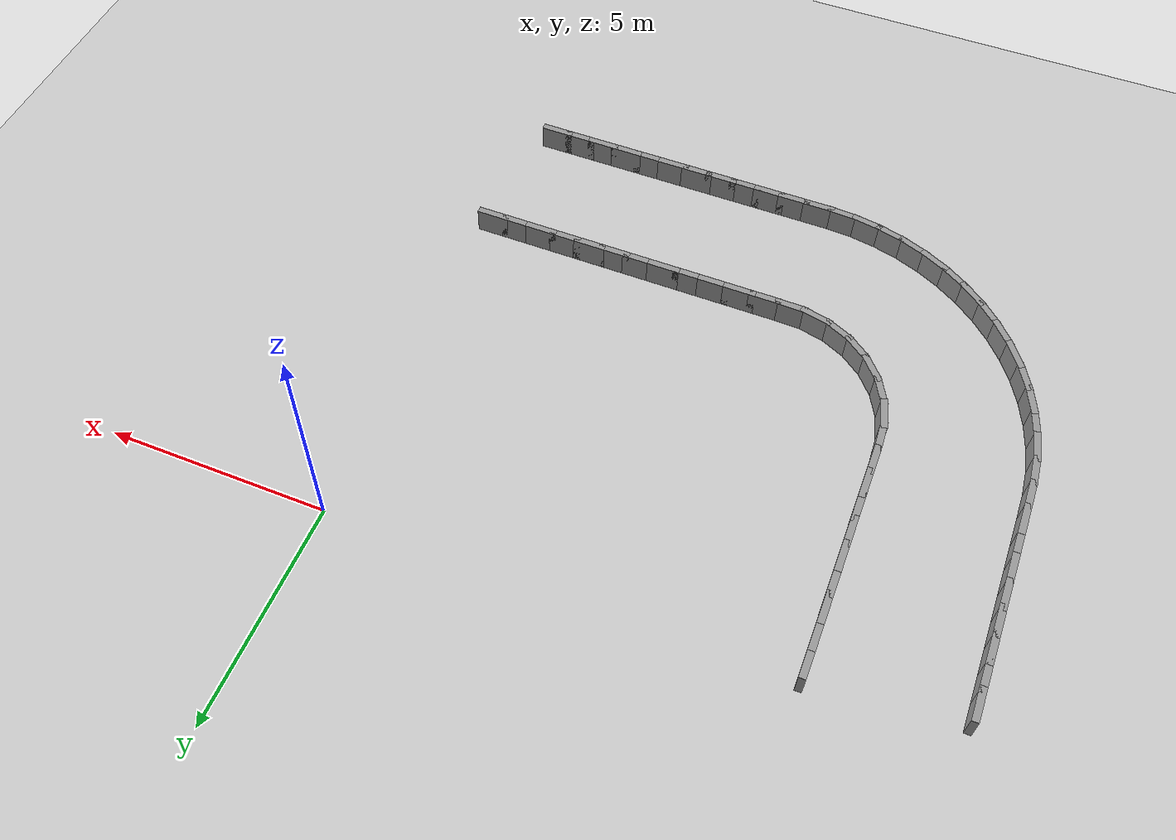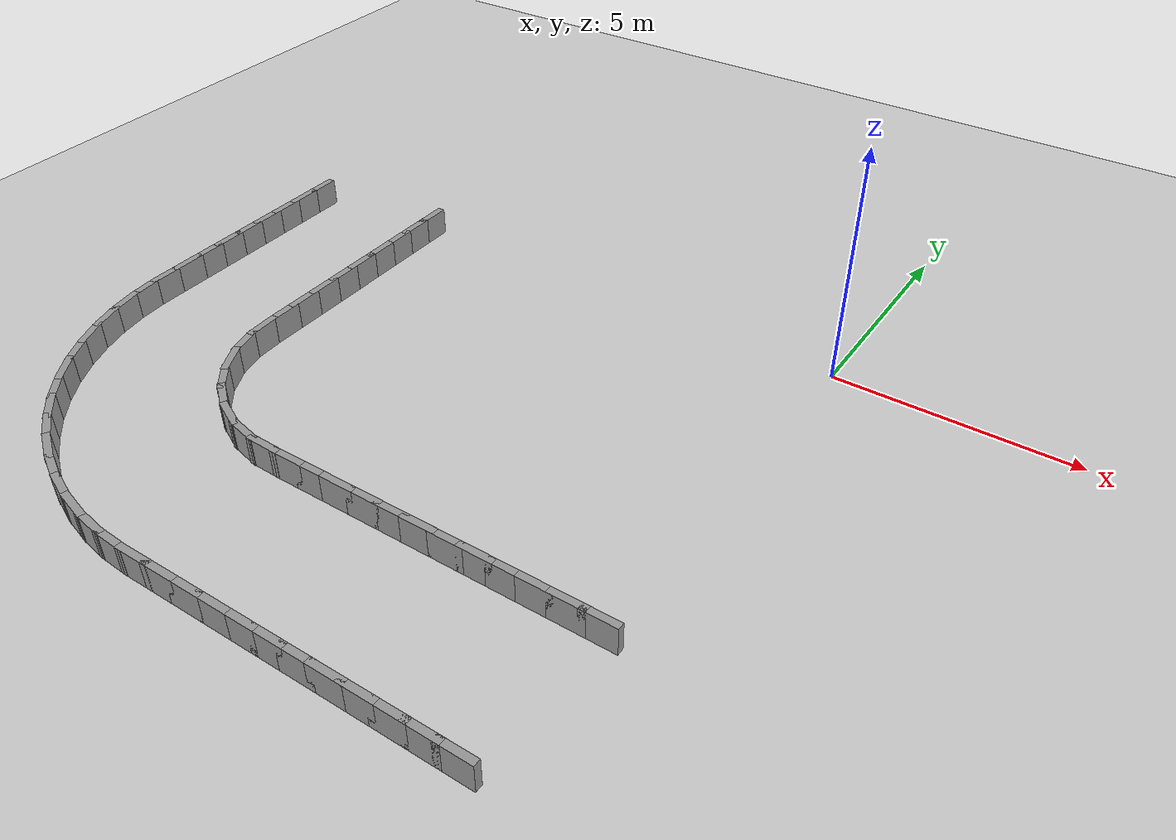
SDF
<sdf version="1.7">
 <world name="default">
  <model name="ground_plane">
   <static>1</static>
   <link name="link">
    <collision name="collision">
     <geometry><plane><normal>0 0 1</normal><size>100 100</size></plane></geometry>
     <surface><friction><ode><mu>100</mu><mu2>50</mu2></ode></friction></surface>
    </collision>
    <visual name="visual">
     <cast_shadows>0</cast_shadows>
     <geometry><plane><normal>0 0 1</normal><size>100 100</size></plane></geometry>
     <material>
      <script><uri>file://media/materials/scripts/gazebo.material</uri><name>Gazebo/Grey</name></script>
     </material>
    </visual>
   </link>
  </model>
  <model name="rand_rrect_01">
   <link name="Wall_48">
    <collision name="Wall_48_Collision">
     <geometry><box><size>0.7500 0.1500 0.6000</size></box></geometry>
     <pose>0 0 0.3000 0 -0 0</pose>
    </collision>
    <visual name="Wall_48_Visual">
     <pose>0 0 0.3000 0 -0 0</pose>
     <geometry><box><size>0.7500 0.1500 0.6000</size></box></geometry>
     <material>
      <script><uri>file://media/materials/scripts/gazebo.material</uri><name>Gazebo/Grey</name></script>
      <ambient>1 1 1 1</ambient>
     </material>
    </visual>
    <pose>-10.0566 -0.2756 0 0 -0 -1.57080</pose>
   </link>
   <link name="Wall_49">
    <collision name="Wall_49_Collision">
     <geometry><box><size>0.7500 0.1500 0.6000</size></box></geometry>
     <pose>0 0 0.3000 0 -0 0</pose>
    </collision>
    <visual name="Wall_49_Visual">
     <pose>0 0 0.3000 0 -0 0</pose>
     <geometry><box><size>0.7500 0.1500 0.6000</size></box></geometry>
     <material>
      <script><uri>file://media/materials/scripts/gazebo.material</uri><name>Gazebo/Grey</name></script>
      <ambient>1 1 1 1</ambient>
     </material>
    </visual>
    <pose>-10.0566 -0.8756 0 0 -0 -1.57080</pose>
   </link>
   <link name="Wall_50">
    <collision name="Wall_50_Collision">
     <geometry><box><size>0.7500 0.1500 0.6000</size></box></geometry>
     <pose>0 0 0.3000 0 -0 0</pose>
    </collision>
    <visual name="Wall_50_Visual">
     <pose>0 0 0.3000 0 -0 0</pose>
     <geometry><box><size>0.7500 0.1500 0.6000</size></box></geometry>
     <material>
      <script><uri>file://media/materials/scripts/gazebo.material</uri><name>Gazebo/Grey</name></script>
      <ambient>1 1 1 1</ambient>
     </material>
    </visual>
    <pose>-10.0566 -1.4756 0 0 -0 -1.57080</pose>
   </link>
   <link name="Wall_51">
    <collision name="Wall_51_Collision">
     <geometry><box><size>0.7500 0.1500 0.6000</size></box></geometry>
     <pose>0 0 0.3000 0 -0 0</pose>
    </collision>
    <visual name="Wall_51_Visual">
     <pose>0 0 0.3000 0 -0 0</pose>
     <geometry><box><size>0.7500 0.1500 0.6000</size></box></geometry>
     <material>
      <script><uri>file://media/materials/scripts/gazebo.material</uri><name>Gazebo/Grey</name></script>
      <ambient>1 1 1 1</ambient>
     </material>
    </visual>
    <pose>-10.0566 -2.0756 0 0 -0 -1.57080</pose>
   </link>
   <link name="Wall_52">
    <collision name="Wall_52_Collision">
     <geometry><box><size>0.7500 0.1500 0.6000</size></box></geometry>
     <pose>0 0 0.3000 0 -0 0</pose>
    </collision>
    <visual name="Wall_52_Visual">
     <pose>0 0 0.3000 0 -0 0</pose>
     <geometry><box><size>0.7500 0.1500 0.6000</size></box></geometry>
     <material>
      <script><uri>file://media/materials/scripts/gazebo.material</uri><name>Gazebo/Grey</name></script>
      <ambient>1 1 1 1</ambient>
     </material>
    </visual>
    <pose>-10.0566 -2.6756 0 0 -0 -1.57080</pose>
   </link>
   <link name="Wall_53">
    <collision name="Wall_53_Collision">
     <geometry><box><size>0.7500 0.1500 0.6000</size></box></geometry>
     <pose>0 0 0.3000 0 -0 0</pose>
    </collision>
    <visual name="Wall_53_Visual">
     <pose>0 0 0.3000 0 -0 0</pose>
     <geometry><box><size>0.7500 0.1500 0.6000</size></box></geometry>
     <material>
      <script><uri>file://media/materials/scripts/gazebo.material</uri><name>Gazebo/Grey</name></script>
      <ambient>1 1 1 1</ambient>
     </material>
    </visual>
    <pose>-10.0566 -3.2756 0 0 -0 -1.57080</pose>
   </link>
   <link name="Wall_54">
    <collision name="Wall_54_Collision">
     <geometry><box><size>0.7500 0.1500 0.6000</size></box></geometry>
     <pose>0 0 0.3000 0 -0 0</pose>
    </collision>
    <visual name="Wall_54_Visual">
     <pose>0 0 0.3000 0 -0 0</pose>
     <geometry><box><size>0.7500 0.1500 0.6000</size></box></geometry>
     <material>
      <script><uri>file://media/materials/scripts/gazebo.material</uri><name>Gazebo/Grey</name></script>
      <ambient>1 1 1 1</ambient>
     </material>
    </visual>
    <pose>-10.0566 -3.8756 0 0 -0 -1.57080</pose>
   </link>
   <link name="Wall_55">
    <collision name="Wall_55_Collision">
     <geometry><box><size>0.7500 0.1500 0.6000</size></box></geometry>
     <pose>0 0 0.3000 0 -0 0</pose>
    </collision>
    <visual name="Wall_55_Visual">
     <pose>0 0 0.3000 0 -0 0</pose>
     <geometry><box><size>0.7500 0.1500 0.6000</size></box></geometry>
     <material>
      <script><uri>file://media/materials/scripts/gazebo.material</uri><name>Gazebo/Grey</name></script>
      <ambient>1 1 1 1</ambient>
     </material>
    </visual>
    <pose>-10.0566 -4.4756 0 0 -0 -1.57080</pose>
   </link>
   <link name="Wall_56">
    <collision name="Wall_56_Collision">
     <geometry><box><size>0.7500 0.1500 0.6000</size></box></geometry>
     <pose>0 0 0.3000 0 -0 0</pose>
    </collision>
    <visual name="Wall_56_Visual">
     <pose>0 0 0.3000 0 -0 0</pose>
     <geometry><box><size>0.7500 0.1500 0.6000</size></box></geometry>
     <material>
      <script><uri>file://media/materials/scripts/gazebo.material</uri><name>Gazebo/Grey</name></script>
      <ambient>1 1 1 1</ambient>
     </material>
    </visual>
    <pose>-10.0566 -5.0756 0 0 -0 -1.57080</pose>
   </link>
   <link name="Wall_57">
    <collision name="Wall_57_Collision">
     <geometry><box><size>0.7493 0.1500 0.6000</size></box></geometry>
     <pose>0 0 0.3000 0 -0 0</pose>
    </collision>
    <visual name="Wall_57_Visual">
     <pose>0 0 0.3000 0 -0 0</pose>
     <geometry><box><size>0.7493 0.1500 0.6000</size></box></geometry>
     <material>
      <script><uri>file://media/materials/scripts/gazebo.material</uri><name>Gazebo/Grey</name></script>
      <ambient>1 1 1 1</ambient>
     </material>
    </visual>
    <pose>-10.0426 -5.6750 0 0 -0 -1.52401</pose>
   </link>
   <link name="Wall_58">
    <collision name="Wall_58_Collision">
     <geometry><box><size>0.7488 0.1500 0.6000</size></box></geometry>
     <pose>0 0 0.3000 0 -0 0</pose>
    </collision>
    <visual name="Wall_58_Visual">
     <pose>0 0 0.3000 0 -0 0</pose>
     <geometry><box><size>0.7488 0.1500 0.6000</size></box></geometry>
     <material>
      <script><uri>file://media/materials/scripts/gazebo.material</uri><name>Gazebo/Grey</name></script>
      <ambient>1 1 1 1</ambient>
     </material>
    </visual>
    <pose>-9.9537 -6.2642 0 0 -0 -1.31815</pose>
   </link>
   <link name="Wall_59">
    <collision name="Wall_59_Collision">
     <geometry><box><size>0.7488 0.1500 0.6000</size></box></geometry>
     <pose>0 0 0.3000 0 -0 0</pose>
    </collision>
    <visual name="Wall_59_Visual">
     <pose>0 0 0.3000 0 -0 0</pose>
     <geometry><box><size>0.7488 0.1500 0.6000</size></box></geometry>
     <material>
      <script><uri>file://media/materials/scripts/gazebo.material</uri><name>Gazebo/Grey</name></script>
      <ambient>1 1 1 1</ambient>
     </material>
    </visual>
    <pose>-9.7429 -6.8208 0 0 -0 -1.09917</pose>
   </link>
   <link name="Wall_60">
    <collision name="Wall_60_Collision">
     <geometry><box><size>0.7488 0.1500 0.6000</size></box></geometry>
     <pose>0 0 0.3000 0 -0 0</pose>
    </collision>
    <visual name="Wall_60_Visual">
     <pose>0 0 0.3000 0 -0 0</pose>
     <geometry><box><size>0.7488 0.1500 0.6000</size></box></geometry>
     <material>
      <script><uri>file://media/materials/scripts/gazebo.material</uri><name>Gazebo/Grey</name></script>
      <ambient>1 1 1 1</ambient>
     </material>
    </visual>
    <pose>-9.4161 -7.3183 0 0 -0 -0.88016</pose>
   </link>
   <link name="Wall_61">
    <collision name="Wall_61_Collision">
     <geometry><box><size>0.7488 0.1500 0.6000</size></box></geometry>
     <pose>0 0 0.3000 0 -0 0</pose>
    </collision>
    <visual name="Wall_61_Visual">
     <pose>0 0 0.3000 0 -0 0</pose>
     <geometry><box><size>0.7488 0.1500 0.6000</size></box></geometry>
     <material>
      <script><uri>file://media/materials/scripts/gazebo.material</uri><name>Gazebo/Grey</name></script>
      <ambient>1 1 1 1</ambient>
     </material>
    </visual>
    <pose>-8.9891 -7.7329 0 0 -0 -0.66117</pose>
   </link>
   <link name="Wall_62">
    <collision name="Wall_62_Collision">
     <geometry><box><size>0.7488 0.1500 0.6000</size></box></geometry>
     <pose>0 0 0.3000 0 -0 0</pose>
    </collision>
    <visual name="Wall_62_Visual">
     <pose>0 0 0.3000 0 -0 0</pose>
     <geometry><box><size>0.7488 0.1500 0.6000</size></box></geometry>
     <material>
      <script><uri>file://media/materials/scripts/gazebo.material</uri><name>Gazebo/Grey</name></script>
      <ambient>1 1 1 1</ambient>
     </material>
    </visual>
    <pose>-8.4821 -8.0449 0 0 -0 -0.44219</pose>
   </link>
   <link name="Wall_63">
    <collision name="Wall_63_Collision">
     <geometry><box><size>0.7488 0.1500 0.6000</size></box></geometry>
     <pose>0 0 0.3000 0 -0 0</pose>
    </collision>
    <visual name="Wall_63_Visual">
     <pose>0 0 0.3000 0 -0 0</pose>
     <geometry><box><size>0.7488 0.1500 0.6000</size></box></geometry>
     <material>
      <script><uri>file://media/materials/scripts/gazebo.material</uri><name>Gazebo/Grey</name></script>
      <ambient>1 1 1 1</ambient>
     </material>
    </visual>
    <pose>-7.9196 -8.2393 0 0 -0 -0.22318</pose>
   </link>
   <link name="Wall_64">
    <collision name="Wall_64_Collision">
     <geometry><box><size>0.7496 0.1500 0.6000</size></box></geometry>
     <pose>0 0 0.3000 0 -0 0</pose>
    </collision>
    <visual name="Wall_64_Visual">
     <pose>0 0 0.3000 0 -0 0</pose>
     <geometry><box><size>0.7496 0.1500 0.6000</size></box></geometry>
     <material>
      <script><uri>file://media/materials/scripts/gazebo.material</uri><name>Gazebo/Grey</name></script>
      <ambient>1 1 1 1</ambient>
     </material>
    </visual>
    <pose>-7.3279 -8.3144 0 0 -0 -0.02951</pose>
   </link>
   <link name="Wall_65">
    <collision name="Wall_65_Collision">
     <geometry><box><size>0.7500 0.1500 0.6000</size></box></geometry>
     <pose>0 0 0.3000 0 -0 0</pose>
    </collision>
    <visual name="Wall_65_Visual">
     <pose>0 0 0.3000 0 -0 0</pose>
     <geometry><box><size>0.7500 0.1500 0.6000</size></box></geometry>
     <material>
      <script><uri>file://media/materials/scripts/gazebo.material</uri><name>Gazebo/Grey</name></script>
      <ambient>1 1 1 1</ambient>
     </material>
    </visual>
    <pose>-6.7283 -8.3232 0 0 -0 0.00000</pose>
   </link>
   <link name="Wall_66">
    <collision name="Wall_66_Collision">
     <geometry><box><size>0.7500 0.1500 0.6000</size></box></geometry>
     <pose>0 0 0.3000 0 -0 0</pose>
    </collision>
    <visual name="Wall_66_Visual">
     <pose>0 0 0.3000 0 -0 0</pose>
     <geometry><box><size>0.7500 0.1500 0.6000</size></box></geometry>
     <material>
      <script><uri>file://media/materials/scripts/gazebo.material</uri><name>Gazebo/Grey</name></script>
      <ambient>1 1 1 1</ambient>
     </material>
    </visual>
    <pose>-6.1283 -8.3232 0 0 -0 0.00000</pose>
   </link>
   <link name="Wall_67">
    <collision name="Wall_67_Collision">
     <geometry><box><size>0.7500 0.1500 0.6000</size></box></geometry>
     <pose>0 0 0.3000 0 -0 0</pose>
    </collision>
    <visual name="Wall_67_Visual">
     <pose>0 0 0.3000 0 -0 0</pose>
     <geometry><box><size>0.7500 0.1500 0.6000</size></box></geometry>
     <material>
      <script><uri>file://media/materials/scripts/gazebo.material</uri><name>Gazebo/Grey</name></script>
      <ambient>1 1 1 1</ambient>
     </material>
    </visual>
    <pose>-5.5283 -8.3232 0 0 -0 0.00000</pose>
   </link>
   <link name="Wall_68">
    <collision name="Wall_68_Collision">
     <geometry><box><size>0.7500 0.1500 0.6000</size></box></geometry>
     <pose>0 0 0.3000 0 -0 0</pose>
    </collision>
    <visual name="Wall_68_Visual">
     <pose>0 0 0.3000 0 -0 0</pose>
     <geometry><box><size>0.7500 0.1500 0.6000</size></box></geometry>
     <material>
      <script><uri>file://media/materials/scripts/gazebo.material</uri><name>Gazebo/Grey</name></script>
      <ambient>1 1 1 1</ambient>
     </material>
    </visual>
    <pose>-4.9283 -8.3232 0 0 -0 0.00000</pose>
   </link>
   <link name="Wall_69">
    <collision name="Wall_69_Collision">
     <geometry><box><size>0.7500 0.1500 0.6000</size></box></geometry>
     <pose>0 0 0.3000 0 -0 0</pose>
    </collision>
    <visual name="Wall_69_Visual">
     <pose>0 0 0.3000 0 -0 0</pose>
     <geometry><box><size>0.7500 0.1500 0.6000</size></box></geometry>
     <material>
      <script><uri>file://media/materials/scripts/gazebo.material</uri><name>Gazebo/Grey</name></script>
      <ambient>1 1 1 1</ambient>
     </material>
    </visual>
    <pose>-4.3283 -8.3232 0 0 -0 0.00000</pose>
   </link>
   <link name="Wall_70">
    <collision name="Wall_70_Collision">
     <geometry><box><size>0.7500 0.1500 0.6000</size></box></geometry>
     <pose>0 0 0.3000 0 -0 0</pose>
    </collision>
    <visual name="Wall_70_Visual">
     <pose>0 0 0.3000 0 -0 0</pose>
     <geometry><box><size>0.7500 0.1500 0.6000</size></box></geometry>
     <material>
      <script><uri>file://media/materials/scripts/gazebo.material</uri><name>Gazebo/Grey</name></script>
      <ambient>1 1 1 1</ambient>
     </material>
    </visual>
    <pose>-3.7283 -8.3232 0 0 -0 0.00000</pose>
   </link>
   <link name="Wall_71">
    <collision name="Wall_71_Collision">
     <geometry><box><size>0.7500 0.1500 0.6000</size></box></geometry>
     <pose>0 0 0.3000 0 -0 0</pose>
    </collision>
    <visual name="Wall_71_Visual">
     <pose>0 0 0.3000 0 -0 0</pose>
     <geometry><box><size>0.7500 0.1500 0.6000</size></box></geometry>
     <material>
      <script><uri>file://media/materials/scripts/gazebo.material</uri><name>Gazebo/Grey</name></script>
      <ambient>1 1 1 1</ambient>
     </material>
    </visual>
    <pose>-3.1283 -8.3232 0 0 -0 0.00000</pose>
   </link>
   <link name="Wall_72">
    <collision name="Wall_72_Collision">
     <geometry><box><size>0.7500 0.1500 0.6000</size></box></geometry>
     <pose>0 0 0.3000 0 -0 0</pose>
    </collision>
    <visual name="Wall_72_Visual">
     <pose>0 0 0.3000 0 -0 0</pose>
     <geometry><box><size>0.7500 0.1500 0.6000</size></box></geometry>
     <material>
      <script><uri>file://media/materials/scripts/gazebo.material</uri><name>Gazebo/Grey</name></script>
      <ambient>1 1 1 1</ambient>
     </material>
    </visual>
    <pose>-2.5283 -8.3232 0 0 -0 0.00000</pose>
   </link>
   <link name="Wall_73">
    <collision name="Wall_73_Collision">
     <geometry><box><size>0.7500 0.1500 0.6000</size></box></geometry>
     <pose>0 0 0.3000 0 -0 0</pose>
    </collision>
    <visual name="Wall_73_Visual">
     <pose>0 0 0.3000 0 -0 0</pose>
     <geometry><box><size>0.7500 0.1500 0.6000</size></box></geometry>
     <material>
      <script><uri>file://media/materials/scripts/gazebo.material</uri><name>Gazebo/Grey</name></script>
      <ambient>1 1 1 1</ambient>
     </material>
    </visual>
    <pose>-1.9283 -8.3232 0 0 -0 0.00000</pose>
   </link>
   <link name="Wall_74">
    <collision name="Wall_74_Collision">
     <geometry><box><size>0.7500 0.1500 0.6000</size></box></geometry>
     <pose>0 0 0.3000 0 -0 0</pose>
    </collision>
    <visual name="Wall_74_Visual">
     <pose>0 0 0.3000 0 -0 0</pose>
     <geometry><box><size>0.7500 0.1500 0.6000</size></box></geometry>
     <material>
      <script><uri>file://media/materials/scripts/gazebo.material</uri><name>Gazebo/Grey</name></script>
      <ambient>1 1 1 1</ambient>
     </material>
    </visual>
    <pose>-1.3283 -8.3232 0 0 -0 0.00000</pose>
   </link>
   <link name="Wall_75">
    <collision name="Wall_75_Collision">
     <geometry><box><size>0.7500 0.1500 0.6000</size></box></geometry>
     <pose>0 0 0.3000 0 -0 0</pose>
    </collision>
    <visual name="Wall_75_Visual">
     <pose>0 0 0.3000 0 -0 0</pose>
     <geometry><box><size>0.7500 0.1500 0.6000</size></box></geometry>
     <material>
      <script><uri>file://media/materials/scripts/gazebo.material</uri><name>Gazebo/Grey</name></script>
      <ambient>1 1 1 1</ambient>
     </material>
    </visual>
    <pose>-0.7283 -8.3232 0 0 -0 0.00000</pose>
   </link>
   <link name="Wall_76">
    <collision name="Wall_76_Collision">
     <geometry><box><size>0.7500 0.1500 0.6000</size></box></geometry>
     <pose>0 0 0.3000 0 -0 0</pose>
    </collision>
    <visual name="Wall_76_Visual">
     <pose>0 0 0.3000 0 -0 0</pose>
     <geometry><box><size>0.7500 0.1500 0.6000</size></box></geometry>
     <material>
      <script><uri>file://media/materials/scripts/gazebo.material</uri><name>Gazebo/Grey</name></script>
      <ambient>1 1 1 1</ambient>
     </material>
    </visual>
    <pose>-0.1283 -8.3232 0 0 -0 0.00000</pose>
   </link>
   <link name="Wall_179">
    <collision name="Wall_179_Collision">
     <geometry><box><size>0.7500 0.1500 0.6000</size></box></geometry>
     <pose>0 0 0.3000 0 -0 0</pose>
    </collision>
    <visual name="Wall_179_Visual">
     <pose>0 0 0.3000 0 -0 0</pose>
     <geometry><box><size>0.7500 0.1500 0.6000</size></box></geometry>
     <material>
      <script><uri>file://media/materials/scripts/gazebo.material</uri><name>Gazebo/Grey</name></script>
      <ambient>1 1 1 1</ambient>
     </material>
    </visual>
    <pose>-13.1826 -0.6551 0 0 -0 -1.57080</pose>
   </link>
   <link name="Wall_180">
    <collision name="Wall_180_Collision">
     <geometry><box><size>0.7500 0.1500 0.6000</size></box></geometry>
     <pose>0 0 0.3000 0 -0 0</pose>
    </collision>
    <visual name="Wall_180_Visual">
     <pose>0 0 0.3000 0 -0 0</pose>
     <geometry><box><size>0.7500 0.1500 0.6000</size></box></geometry>
     <material>
      <script><uri>file://media/materials/scripts/gazebo.material</uri><name>Gazebo/Grey</name></script>
      <ambient>1 1 1 1</ambient>
     </material>
    </visual>
    <pose>-13.1826 -1.2551 0 0 -0 -1.57080</pose>
   </link>
   <link name="Wall_181">
    <collision name="Wall_181_Collision">
     <geometry><box><size>0.7500 0.1500 0.6000</size></box></geometry>
     <pose>0 0 0.3000 0 -0 0</pose>
    </collision>
    <visual name="Wall_181_Visual">
     <pose>0 0 0.3000 0 -0 0</pose>
     <geometry><box><size>0.7500 0.1500 0.6000</size></box></geometry>
     <material>
      <script><uri>file://media/materials/scripts/gazebo.material</uri><name>Gazebo/Grey</name></script>
      <ambient>1 1 1 1</ambient>
     </material>
    </visual>
    <pose>-13.1826 -1.8551 0 0 -0 -1.57080</pose>
   </link>
   <link name="Wall_182">
    <collision name="Wall_182_Collision">
     <geometry><box><size>0.7500 0.1500 0.6000</size></box></geometry>
     <pose>0 0 0.3000 0 -0 0</pose>
    </collision>
    <visual name="Wall_182_Visual">
     <pose>0 0 0.3000 0 -0 0</pose>
     <geometry><box><size>0.7500 0.1500 0.6000</size></box></geometry>
     <material>
      <script><uri>file://media/materials/scripts/gazebo.material</uri><name>Gazebo/Grey</name></script>
      <ambient>1 1 1 1</ambient>
     </material>
    </visual>
    <pose>-13.1826 -2.4551 0 0 -0 -1.57080</pose>
   </link>
   <link name="Wall_183">
    <collision name="Wall_183_Collision">
     <geometry><box><size>0.7500 0.1500 0.6000</size></box></geometry>
     <pose>0 0 0.3000 0 -0 0</pose>
    </collision>
    <visual name="Wall_183_Visual">
     <pose>0 0 0.3000 0 -0 0</pose>
     <geometry><box><size>0.7500 0.1500 0.6000</size></box></geometry>
     <material>
      <script><uri>file://media/materials/scripts/gazebo.material</uri><name>Gazebo/Grey</name></script>
      <ambient>1 1 1 1</ambient>
     </material>
    </visual>
    <pose>-13.1826 -3.0551 0 0 -0 -1.57080</pose>
   </link>
   <link name="Wall_184">
    <collision name="Wall_184_Collision">
     <geometry><box><size>0.7500 0.1500 0.6000</size></box></geometry>
     <pose>0 0 0.3000 0 -0 0</pose>
    </collision>
    <visual name="Wall_184_Visual">
     <pose>0 0 0.3000 0 -0 0</pose>
     <geometry><box><size>0.7500 0.1500 0.6000</size></box></geometry>
     <material>
      <script><uri>file://media/materials/scripts/gazebo.material</uri><name>Gazebo/Grey</name></script>
      <ambient>1 1 1 1</ambient>
     </material>
    </visual>
    <pose>-13.1826 -3.6551 0 0 -0 -1.57080</pose>
   </link>
   <link name="Wall_185">
    <collision name="Wall_185_Collision">
     <geometry><box><size>0.7500 0.1500 0.6000</size></box></geometry>
     <pose>0 0 0.3000 0 -0 0</pose>
    </collision>
    <visual name="Wall_185_Visual">
     <pose>0 0 0.3000 0 -0 0</pose>
     <geometry><box><size>0.7500 0.1500 0.6000</size></box></geometry>
     <material>
      <script><uri>file://media/materials/scripts/gazebo.material</uri><name>Gazebo/Grey</name></script>
      <ambient>1 1 1 1</ambient>
     </material>
    </visual>
    <pose>-13.1826 -4.2551 0 0 -0 -1.57080</pose>
   </link>
   <link name="Wall_186">
    <collision name="Wall_186_Collision">
     <geometry><box><size>0.7500 0.1500 0.6000</size></box></geometry>
     <pose>0 0 0.3000 0 -0 0</pose>
    </collision>
    <visual name="Wall_186_Visual">
     <pose>0 0 0.3000 0 -0 0</pose>
     <geometry><box><size>0.7500 0.1500 0.6000</size></box></geometry>
     <material>
      <script><uri>file://media/materials/scripts/gazebo.material</uri><name>Gazebo/Grey</name></script>
      <ambient>1 1 1 1</ambient>
     </material>
    </visual>
    <pose>-13.1826 -4.8551 0 0 -0 -1.57080</pose>
   </link>
   <link name="Wall_187">
    <collision name="Wall_187_Collision">
     <geometry><box><size>0.7500 0.1500 0.6000</size></box></geometry>
     <pose>0 0 0.3000 0 -0 0</pose>
    </collision>
    <visual name="Wall_187_Visual">
     <pose>0 0 0.3000 0 -0 0</pose>
     <geometry><box><size>0.7500 0.1500 0.6000</size></box></geometry>
     <material>
      <script><uri>file://media/materials/scripts/gazebo.material</uri><name>Gazebo/Grey</name></script>
      <ambient>1 1 1 1</ambient>
     </material>
    </visual>
    <pose>-13.1813 -5.4551 0 0 -0 -1.56658</pose>
   </link>
   <link name="Wall_188">
    <collision name="Wall_188_Collision">
     <geometry><box><size>0.7497 0.1500 0.6000</size></box></geometry>
     <pose>0 0 0.3000 0 -0 0</pose>
    </collision>
    <visual name="Wall_188_Visual">
     <pose>0 0 0.3000 0 -0 0</pose>
     <geometry><box><size>0.7497 0.1500 0.6000</size></box></geometry>
     <material>
      <script><uri>file://media/materials/scripts/gazebo.material</uri><name>Gazebo/Grey</name></script>
      <ambient>1 1 1 1</ambient>
     </material>
    </visual>
    <pose>-13.1559 -6.0540 0 0 -0 -1.49039</pose>
   </link>
   <link name="Wall_189">
    <collision name="Wall_189_Collision">
     <geometry><box><size>0.7497 0.1500 0.6000</size></box></geometry>
     <pose>0 0 0.3000 0 -0 0</pose>
    </collision>
    <visual name="Wall_189_Visual">
     <pose>0 0 0.3000 0 -0 0</pose>
     <geometry><box><size>0.7497 0.1500 0.6000</size></box></geometry>
     <material>
      <script><uri>file://media/materials/scripts/gazebo.material</uri><name>Gazebo/Grey</name></script>
      <ambient>1 1 1 1</ambient>
     </material>
    </visual>
    <pose>-13.0774 -6.6478 0 0 -0 -1.38811</pose>
   </link>
   <link name="Wall_190">
    <collision name="Wall_190_Collision">
     <geometry><box><size>0.7497 0.1500 0.6000</size></box></geometry>
     <pose>0 0 0.3000 0 -0 0</pose>
    </collision>
    <visual name="Wall_190_Visual">
     <pose>0 0 0.3000 0 -0 0</pose>
     <geometry><box><size>0.7497 0.1500 0.6000</size></box></geometry>
     <material>
      <script><uri>file://media/materials/scripts/gazebo.material</uri><name>Gazebo/Grey</name></script>
      <ambient>1 1 1 1</ambient>
     </material>
    </visual>
    <pose>-12.9386 -7.2304 0 0 -0 -1.28579</pose>
   </link>
   <link name="Wall_191">
    <collision name="Wall_191_Collision">
     <geometry><box><size>0.7497 0.1500 0.6000</size></box></geometry>
     <pose>0 0 0.3000 0 -0 0</pose>
    </collision>
    <visual name="Wall_191_Visual">
     <pose>0 0 0.3000 0 -0 0</pose>
     <geometry><box><size>0.7497 0.1500 0.6000</size></box></geometry>
     <material>
      <script><uri>file://media/materials/scripts/gazebo.material</uri><name>Gazebo/Grey</name></script>
      <ambient>1 1 1 1</ambient>
     </material>
    </visual>
    <pose>-12.7410 -7.7959 0 0 -0 -1.18351</pose>
   </link>
   <link name="Wall_192">
    <collision name="Wall_192_Collision">
     <geometry><box><size>0.7497 0.1500 0.6000</size></box></geometry>
     <pose>0 0 0.3000 0 -0 0</pose>
    </collision>
    <visual name="Wall_192_Visual">
     <pose>0 0 0.3000 0 -0 0</pose>
     <geometry><box><size>0.7497 0.1500 0.6000</size></box></geometry>
     <material>
      <script><uri>file://media/materials/scripts/gazebo.material</uri><name>Gazebo/Grey</name></script>
      <ambient>1 1 1 1</ambient>
     </material>
    </visual>
    <pose>-12.4868 -8.3382 0 0 -0 -1.08124</pose>
   </link>
   <link name="Wall_193">
    <collision name="Wall_193_Collision">
     <geometry><box><size>0.7497 0.1500 0.6000</size></box></geometry>
     <pose>0 0 0.3000 0 -0 0</pose>
    </collision>
    <visual name="Wall_193_Visual">
     <pose>0 0 0.3000 0 -0 0</pose>
     <geometry><box><size>0.7497 0.1500 0.6000</size></box></geometry>
     <material>
      <script><uri>file://media/materials/scripts/gazebo.material</uri><name>Gazebo/Grey</name></script>
      <ambient>1 1 1 1</ambient>
     </material>
    </visual>
    <pose>-12.1785 -8.8517 0 0 -0 -0.97894</pose>
   </link>
   <link name="Wall_194">
    <collision name="Wall_194_Collision">
     <geometry><box><size>0.7497 0.1500 0.6000</size></box></geometry>
     <pose>0 0 0.3000 0 -0 0</pose>
    </collision>
    <visual name="Wall_194_Visual">
     <pose>0 0 0.3000 0 -0 0</pose>
     <geometry><box><size>0.7497 0.1500 0.6000</size></box></geometry>
     <material>
      <script><uri>file://media/materials/scripts/gazebo.material</uri><name>Gazebo/Grey</name></script>
      <ambient>1 1 1 1</ambient>
     </material>
    </visual>
    <pose>-11.8193 -9.3310 0 0 -0 -0.87664</pose>
   </link>
   <link name="Wall_195">
    <collision name="Wall_195_Collision">
     <geometry><box><size>0.7497 0.1500 0.6000</size></box></geometry>
     <pose>0 0 0.3000 0 -0 0</pose>
    </collision>
    <visual name="Wall_195_Visual">
     <pose>0 0 0.3000 0 -0 0</pose>
     <geometry><box><size>0.7497 0.1500 0.6000</size></box></geometry>
     <material>
      <script><uri>file://media/materials/scripts/gazebo.material</uri><name>Gazebo/Grey</name></script>
      <ambient>1 1 1 1</ambient>
     </material>
    </visual>
    <pose>-11.4131 -9.7712 0 0 -0 -0.77437</pose>
   </link>
   <link name="Wall_196">
    <collision name="Wall_196_Collision">
     <geometry><box><size>0.7497 0.1500 0.6000</size></box></geometry>
     <pose>0 0 0.3000 0 -0 0</pose>
    </collision>
    <visual name="Wall_196_Visual">
     <pose>0 0 0.3000 0 -0 0</pose>
     <geometry><box><size>0.7497 0.1500 0.6000</size></box></geometry>
     <material>
      <script><uri>file://media/materials/scripts/gazebo.material</uri><name>Gazebo/Grey</name></script>
      <ambient>1 1 1 1</ambient>
     </material>
    </visual>
    <pose>-10.9641 -10.1676 0 0 -0 -0.67209</pose>
   </link>
   <link name="Wall_197">
    <collision name="Wall_197_Collision">
     <geometry><box><size>0.7497 0.1500 0.6000</size></box></geometry>
     <pose>0 0 0.3000 0 -0 0</pose>
    </collision>
    <visual name="Wall_197_Visual">
     <pose>0 0 0.3000 0 -0 0</pose>
     <geometry><box><size>0.7497 0.1500 0.6000</size></box></geometry>
     <material>
      <script><uri>file://media/materials/scripts/gazebo.material</uri><name>Gazebo/Grey</name></script>
      <ambient>1 1 1 1</ambient>
     </material>
    </visual>
    <pose>-10.4769 -10.5161 0 0 -0 -0.56977</pose>
   </link>
   <link name="Wall_198">
    <collision name="Wall_198_Collision">
     <geometry><box><size>0.7497 0.1500 0.6000</size></box></geometry>
     <pose>0 0 0.3000 0 -0 0</pose>
    </collision>
    <visual name="Wall_198_Visual">
     <pose>0 0 0.3000 0 -0 0</pose>
     <geometry><box><size>0.7497 0.1500 0.6000</size></box></geometry>
     <material>
      <script><uri>file://media/materials/scripts/gazebo.material</uri><name>Gazebo/Grey</name></script>
      <ambient>1 1 1 1</ambient>
     </material>
    </visual>
    <pose>-9.9568 -10.8130 0 0 -0 -0.46749</pose>
   </link>
   <link name="Wall_199">
    <collision name="Wall_199_Collision">
     <geometry><box><size>0.7497 0.1500 0.6000</size></box></geometry>
     <pose>0 0 0.3000 0 -0 0</pose>
    </collision>
    <visual name="Wall_199_Visual">
     <pose>0 0 0.3000 0 -0 0</pose>
     <geometry><box><size>0.7497 0.1500 0.6000</size></box></geometry>
     <material>
      <script><uri>file://media/materials/scripts/gazebo.material</uri><name>Gazebo/Grey</name></script>
      <ambient>1 1 1 1</ambient>
     </material>
    </visual>
    <pose>-9.4090 -11.0552 0 0 -0 -0.36522</pose>
   </link>
   <link name="Wall_200">
    <collision name="Wall_200_Collision">
     <geometry><box><size>0.7497 0.1500 0.6000</size></box></geometry>
     <pose>0 0 0.3000 0 -0 0</pose>
    </collision>
    <visual name="Wall_200_Visual">
     <pose>0 0 0.3000 0 -0 0</pose>
     <geometry><box><size>0.7497 0.1500 0.6000</size></box></geometry>
     <material>
      <script><uri>file://media/materials/scripts/gazebo.material</uri><name>Gazebo/Grey</name></script>
      <ambient>1 1 1 1</ambient>
     </material>
    </visual>
    <pose>-8.8393 -11.2402 0 0 -0 -0.26293</pose>
   </link>
   <link name="Wall_201">
    <collision name="Wall_201_Collision">
     <geometry><box><size>0.7497 0.1500 0.6000</size></box></geometry>
     <pose>0 0 0.3000 0 -0 0</pose>
    </collision>
    <visual name="Wall_201_Visual">
     <pose>0 0 0.3000 0 -0 0</pose>
     <geometry><box><size>0.7497 0.1500 0.6000</size></box></geometry>
     <material>
      <script><uri>file://media/materials/scripts/gazebo.material</uri><name>Gazebo/Grey</name></script>
      <ambient>1 1 1 1</ambient>
     </material>
    </visual>
    <pose>-8.2537 -11.3661 0 0 -0 -0.16062</pose>
   </link>
   <link name="Wall_202">
    <collision name="Wall_202_Collision">
     <geometry><box><size>0.7497 0.1500 0.6000</size></box></geometry>
     <pose>0 0 0.3000 0 -0 0</pose>
    </collision>
    <visual name="Wall_202_Visual">
     <pose>0 0 0.3000 0 -0 0</pose>
     <geometry><box><size>0.7497 0.1500 0.6000</size></box></geometry>
     <material>
      <script><uri>file://media/materials/scripts/gazebo.material</uri><name>Gazebo/Grey</name></script>
      <ambient>1 1 1 1</ambient>
     </material>
    </visual>
    <pose>-7.6584 -11.4316 0 0 -0 -0.05834</pose>
   </link>
   <link name="Wall_203">
    <collision name="Wall_203_Collision">
     <geometry><box><size>0.7500 0.1500 0.6000</size></box></geometry>
     <pose>0 0 0.3000 0 -0 0</pose>
    </collision>
    <visual name="Wall_203_Visual">
     <pose>0 0 0.3000 0 -0 0</pose>
     <geometry><box><size>0.7500 0.1500 0.6000</size></box></geometry>
     <material>
      <script><uri>file://media/materials/scripts/gazebo.material</uri><name>Gazebo/Grey</name></script>
      <ambient>1 1 1 1</ambient>
     </material>
    </visual>
    <pose>-7.0590 -11.4491 0 0 -0 -0.00028</pose>
   </link>
   <link name="Wall_204">
    <collision name="Wall_204_Collision">
     <geometry><box><size>0.7500 0.1500 0.6000</size></box></geometry>
     <pose>0 0 0.3000 0 -0 0</pose>
    </collision>
    <visual name="Wall_204_Visual">
     <pose>0 0 0.3000 0 -0 0</pose>
     <geometry><box><size>0.7500 0.1500 0.6000</size></box></geometry>
     <material>
      <script><uri>file://media/materials/scripts/gazebo.material</uri><name>Gazebo/Grey</name></script>
      <ambient>1 1 1 1</ambient>
     </material>
    </visual>
    <pose>-6.4590 -11.4492 0 0 -0 0.00000</pose>
   </link>
   <link name="Wall_205">
    <collision name="Wall_205_Collision">
     <geometry><box><size>0.7500 0.1500 0.6000</size></box></geometry>
     <pose>0 0 0.3000 0 -0 0</pose>
    </collision>
    <visual name="Wall_205_Visual">
     <pose>0 0 0.3000 0 -0 0</pose>
     <geometry><box><size>0.7500 0.1500 0.6000</size></box></geometry>
     <material>
      <script><uri>file://media/materials/scripts/gazebo.material</uri><name>Gazebo/Grey</name></script>
      <ambient>1 1 1 1</ambient>
     </material>
    </visual>
    <pose>-5.8590 -11.4492 0 0 -0 0.00000</pose>
   </link>
   <link name="Wall_206">
    <collision name="Wall_206_Collision">
     <geometry><box><size>0.7500 0.1500 0.6000</size></box></geometry>
     <pose>0 0 0.3000 0 -0 0</pose>
    </collision>
    <visual name="Wall_206_Visual">
     <pose>0 0 0.3000 0 -0 0</pose>
     <geometry><box><size>0.7500 0.1500 0.6000</size></box></geometry>
     <material>
      <script><uri>file://media/materials/scripts/gazebo.material</uri><name>Gazebo/Grey</name></script>
      <ambient>1 1 1 1</ambient>
     </material>
    </visual>
    <pose>-5.2590 -11.4492 0 0 -0 0.00000</pose>
   </link>
   <link name="Wall_207">
    <collision name="Wall_207_Collision">
     <geometry><box><size>0.7500 0.1500 0.6000</size></box></geometry>
     <pose>0 0 0.3000 0 -0 0</pose>
    </collision>
    <visual name="Wall_207_Visual">
     <pose>0 0 0.3000 0 -0 0</pose>
     <geometry><box><size>0.7500 0.1500 0.6000</size></box></geometry>
     <material>
      <script><uri>file://media/materials/scripts/gazebo.material</uri><name>Gazebo/Grey</name></script>
      <ambient>1 1 1 1</ambient>
     </material>
    </visual>
    <pose>-4.6590 -11.4492 0 0 -0 0.00000</pose>
   </link>
   <link name="Wall_208">
    <collision name="Wall_208_Collision">
     <geometry><box><size>0.7500 0.1500 0.6000</size></box></geometry>
     <pose>0 0 0.3000 0 -0 0</pose>
    </collision>
    <visual name="Wall_208_Visual">
     <pose>0 0 0.3000 0 -0 0</pose>
     <geometry><box><size>0.7500 0.1500 0.6000</size></box></geometry>
     <material>
      <script><uri>file://media/materials/scripts/gazebo.material</uri><name>Gazebo/Grey</name></script>
      <ambient>1 1 1 1</ambient>
     </material>
    </visual>
    <pose>-4.0590 -11.4492 0 0 -0 0.00000</pose>
   </link>
   <link name="Wall_209">
    <collision name="Wall_209_Collision">
     <geometry><box><size>0.7500 0.1500 0.6000</size></box></geometry>
     <pose>0 0 0.3000 0 -0 0</pose>
    </collision>
    <visual name="Wall_209_Visual">
     <pose>0 0 0.3000 0 -0 0</pose>
     <geometry><box><size>0.7500 0.1500 0.6000</size></box></geometry>
     <material>
      <script><uri>file://media/materials/scripts/gazebo.material</uri><name>Gazebo/Grey</name></script>
      <ambient>1 1 1 1</ambient>
     </material>
    </visual>
    <pose>-3.4590 -11.4492 0 0 -0 0.00000</pose>
   </link>
   <link name="Wall_210">
    <collision name="Wall_210_Collision">
     <geometry><box><size>0.7500 0.1500 0.6000</size></box></geometry>
     <pose>0 0 0.3000 0 -0 0</pose>
    </collision>
    <visual name="Wall_210_Visual">
     <pose>0 0 0.3000 0 -0 0</pose>
     <geometry><box><size>0.7500 0.1500 0.6000</size></box></geometry>
     <material>
      <script><uri>file://media/materials/scripts/gazebo.material</uri><name>Gazebo/Grey</name></script>
      <ambient>1 1 1 1</ambient>
     </material>
    </visual>
    <pose>-2.8590 -11.4492 0 0 -0 0.00000</pose>
   </link>
   <link name="Wall_211">
    <collision name="Wall_211_Collision">
     <geometry><box><size>0.7500 0.1500 0.6000</size></box></geometry>
     <pose>0 0 0.3000 0 -0 0</pose>
    </collision>
    <visual name="Wall_211_Visual">
     <pose>0 0 0.3000 0 -0 0</pose>
     <geometry><box><size>0.7500 0.1500 0.6000</size></box></geometry>
     <material>
      <script><uri>file://media/materials/scripts/gazebo.material</uri><name>Gazebo/Grey</name></script>
      <ambient>1 1 1 1</ambient>
     </material>
    </visual>
    <pose>-2.2590 -11.4492 0 0 -0 0.00000</pose>
   </link>
   <link name="Wall_212">
    <collision name="Wall_212_Collision">
     <geometry><box><size>0.7500 0.1500 0.6000</size></box></geometry>
     <pose>0 0 0.3000 0 -0 0</pose>
    </collision>
    <visual name="Wall_212_Visual">
     <pose>0 0 0.3000 0 -0 0</pose>
     <geometry><box><size>0.7500 0.1500 0.6000</size></box></geometry>
     <material>
      <script><uri>file://media/materials/scripts/gazebo.material</uri><name>Gazebo/Grey</name></script>
      <ambient>1 1 1 1</ambient>
     </material>
    </visual>
    <pose>-1.6590 -11.4492 0 0 -0 0.00000</pose>
   </link>
   <link name="Wall_213">
    <collision name="Wall_213_Collision">
     <geometry><box><size>0.7500 0.1500 0.6000</size></box></geometry>
     <pose>0 0 0.3000 0 -0 0</pose>
    </collision>
    <visual name="Wall_213_Visual">
     <pose>0 0 0.3000 0 -0 0</pose>
     <geometry><box><size>0.7500 0.1500 0.6000</size></box></geometry>
     <material>
      <script><uri>file://media/materials/scripts/gazebo.material</uri><name>Gazebo/Grey</name></script>
      <ambient>1 1 1 1</ambient>
     </material>
    </visual>
    <pose>-1.0590 -11.4492 0 0 -0 0.00000</pose>
   </link>
   <link name="Wall_214">
    <collision name="Wall_214_Collision">
     <geometry><box><size>0.7500 0.1500 0.6000</size></box></geometry>
     <pose>0 0 0.3000 0 -0 0</pose>
    </collision>
    <visual name="Wall_214_Visual">
     <pose>0 0 0.3000 0 -0 0</pose>
     <geometry><box><size>0.7500 0.1500 0.6000</size></box></geometry>
     <material>
      <script><uri>file://media/materials/scripts/gazebo.material</uri><name>Gazebo/Grey</name></script>
      <ambient>1 1 1 1</ambient>
     </material>
    </visual>
    <pose>-0.4590 -11.4492 0 0 -0 0.00000</pose>
   </link>
   <static>1</static>
  </model>
 </world>
</sdf>
